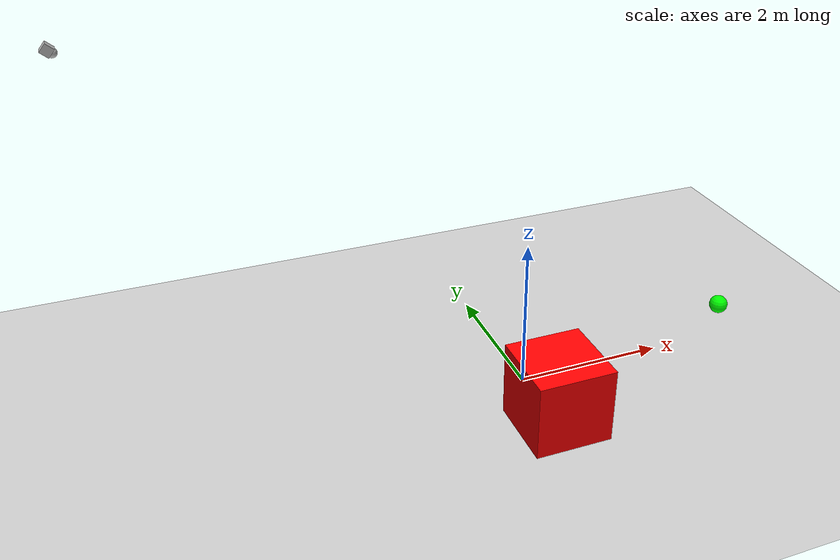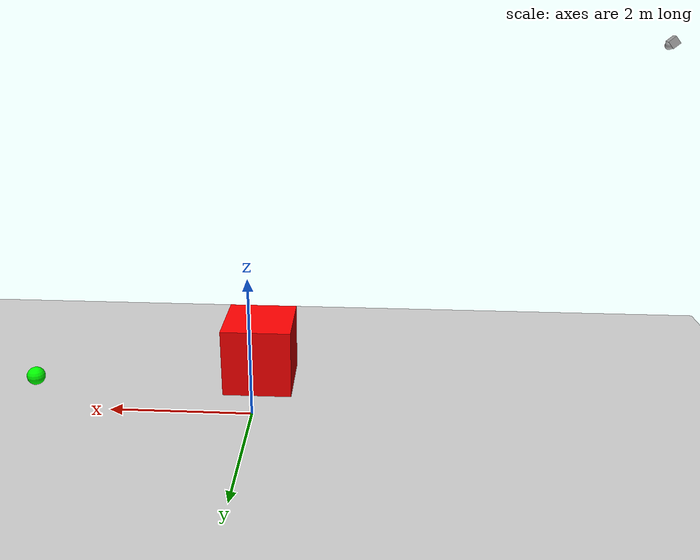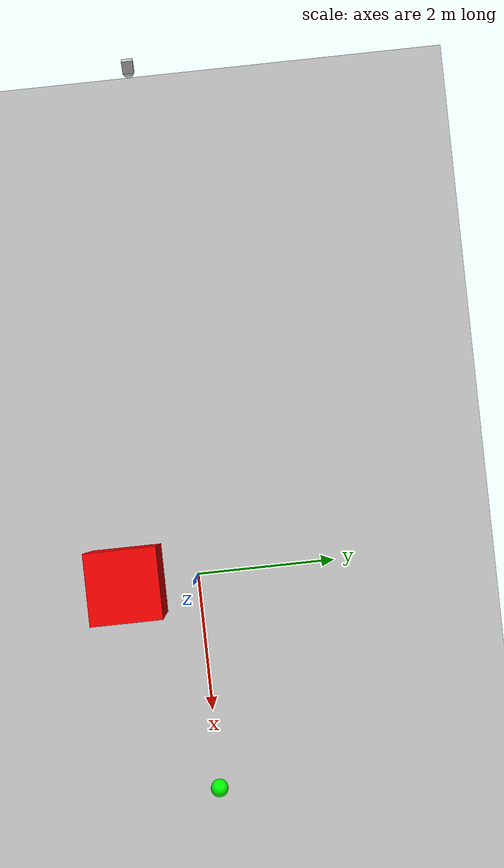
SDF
<sdf version="1.6">
 <world name="camera_sensor_throttled">
  <physics name="1ms" type="ignored">
   <max_step_size>0.001</max_step_size>
   <real_time_factor>1.0</real_time_factor>
  </physics>
  <plugin filename="gz-sim-physics-system" name="gz::sim::systems::Physics"/>
  <plugin filename="gz-sim-sensors-system" name="gz::sim::systems::Sensors">
   <render_engine>ogre2</render_engine>
  </plugin>
  <plugin filename="gz-sim-user-commands-system" name="gz::sim::systems::UserCommands"/>
  <plugin filename="gz-sim-scene-broadcaster-system" name="gz::sim::systems::SceneBroadcaster"/>
  <scene><ambient>1.0 1.0 1.0</ambient><background>0.8 0.8 0.8</background><grid>true</grid></scene>
  <light type="directional" name="sun">
   <pose>0 0 10 0 0 0</pose>
   <diffuse>0.8 0.8 0.8 1</diffuse>
   <specular>0.8 0.8 0.8 1</specular>
   <attenuation>
    <range>1000</range>
    <constant>0.9</constant>
    <linear>0.01</linear>
    <quadratic>0.001</quadratic>
   </attenuation>
   <direction>-0.5 0.1 -0.9</direction>
  </light>
  <model name="ground_plane">
   <static>true</static>
   <link name="link">
    <collision name="collision">
     <geometry><plane><normal>0 0 1</normal><size>100 100</size></plane></geometry>
    </collision>
    <visual name="visual">
     <geometry><plane><normal>0 0 1</normal><size>100 100</size></plane></geometry>
     <material>
      <ambient>0.8 0.8 0.8 1</ambient>
      <diffuse>0.8 0.8 0.8 1</diffuse>
      <specular>0.8 0.8 0.8 1</specular>
     </material>
    </visual>
   </link>
  </model>
  <model name="box">
   <pose>0 -1 0.5 0 0 0</pose>
   <link name="box_link">
    <inertial>
     <inertia><ixx>1</ixx><ixy>0</ixy><ixz>0</ixz><iyy>1</iyy><iyz>0</iyz><izz>1</izz></inertia>
     <mass>1.0</mass>
    </inertial>
    <collision name="box_collision"><geometry><box><size>1 1 1</size></box></geometry></collision>
    <visual name="box_visual">
     <geometry><box><size>1 1 1</size></box></geometry>
     <material><ambient>1 0 0 1</ambient><diffuse>1 0 0 1</diffuse><specular>1 0 0 1</specular></material>
    </visual>
   </link>
  </model>
  <model name="sphere">
   <static>true</static>
   <pose>3 0 0.5 0 0 0</pose>
   <link name="sphere_link">
    <collision name="sphere_collision"><geometry><sphere><radius>0.125</radius></sphere></geometry></collision>
    <visual name="sphere_visual">
     <geometry><sphere><radius>0.125</radius></sphere></geometry>
     <material><ambient>0 1 0 1</ambient><diffuse>0 1 0 1</diffuse><specular>0 1 0 1</specular></material>
     <cast_shadows>false</cast_shadows>
    </visual>
   </link>
  </model>
  <model name="camera">
   <static>true</static>
   <pose>-5 0 5 0 0.7 0</pose>
   <link name="link">
    <pose>0.05 0.05 0.05 0 0 0</pose>
    <inertial>
     <mass>0.1</mass>
     <inertia><ixx>0.000166667</ixx><iyy>0.000166667</iyy><izz>0.000166667</izz></inertia>
    </inertial>
    <collision name="collision"><geometry><box><size>0.1 0.1 0.1</size></box></geometry></collision>
    <visual name="visual"><geometry><box><size>0.1 0.1 0.1</size></box></geometry></visual>
    <visual name="lens_visual">
     <pose>0.05 0 0 0 0 0</pose>
     <geometry><sphere><radius>0.05</radius></sphere></geometry>
    </visual>
    <sensor name="camera" type="camera">
     <camera>
      <horizontal_fov>1.047</horizontal_fov>
      <image><width>320</width><height>240</height></image>
      <clip><near>0.1</near><far>100</far></clip>
     </camera>
     <always_on>1</always_on>
     <update_rate>5</update_rate>
     <visualize>true</visualize>
     <topic>camera</topic>
    </sensor>
   </link>
  </model>
 </world>
</sdf>
